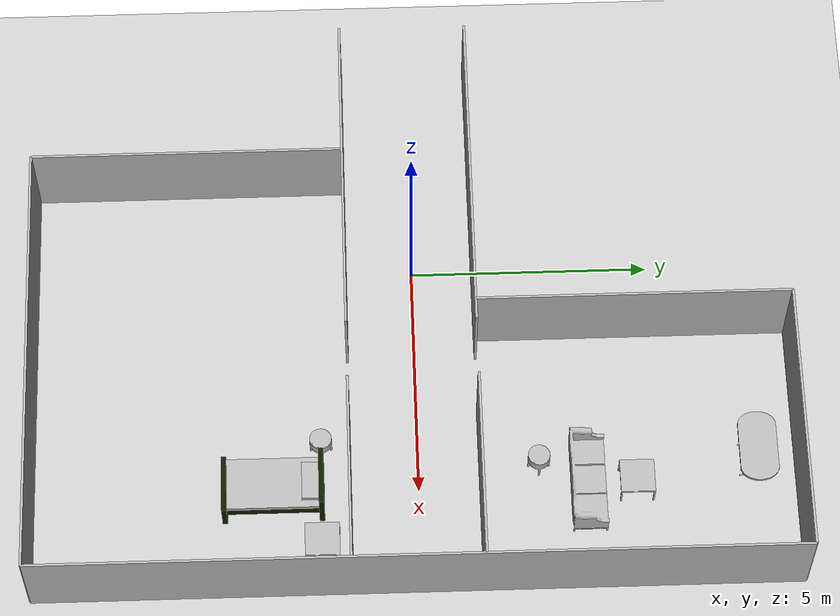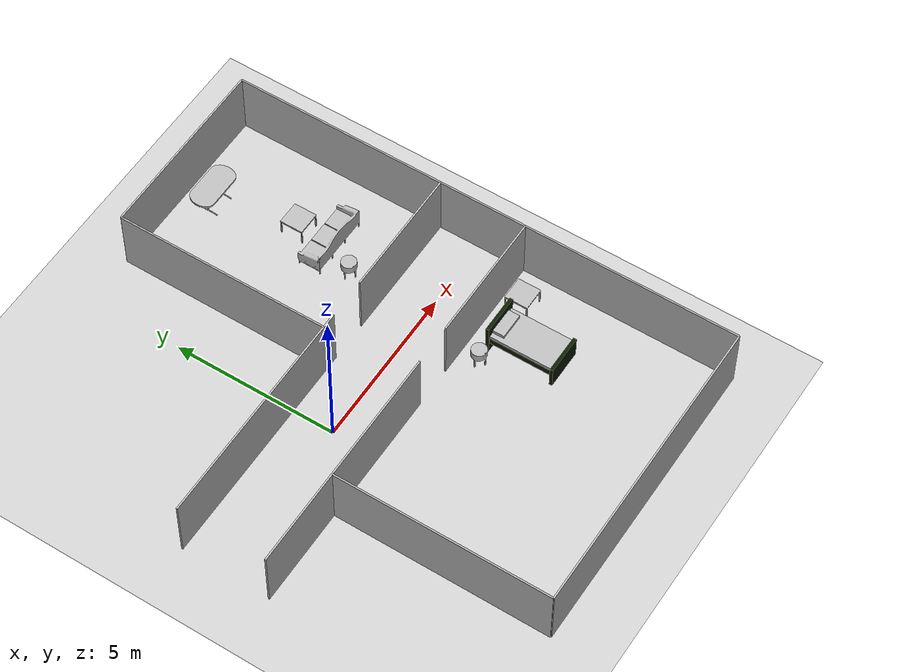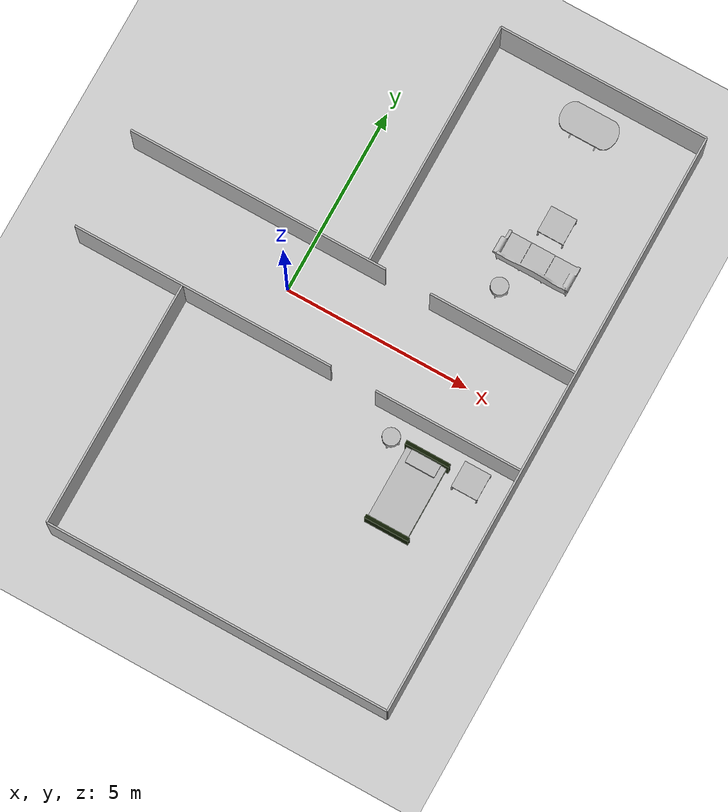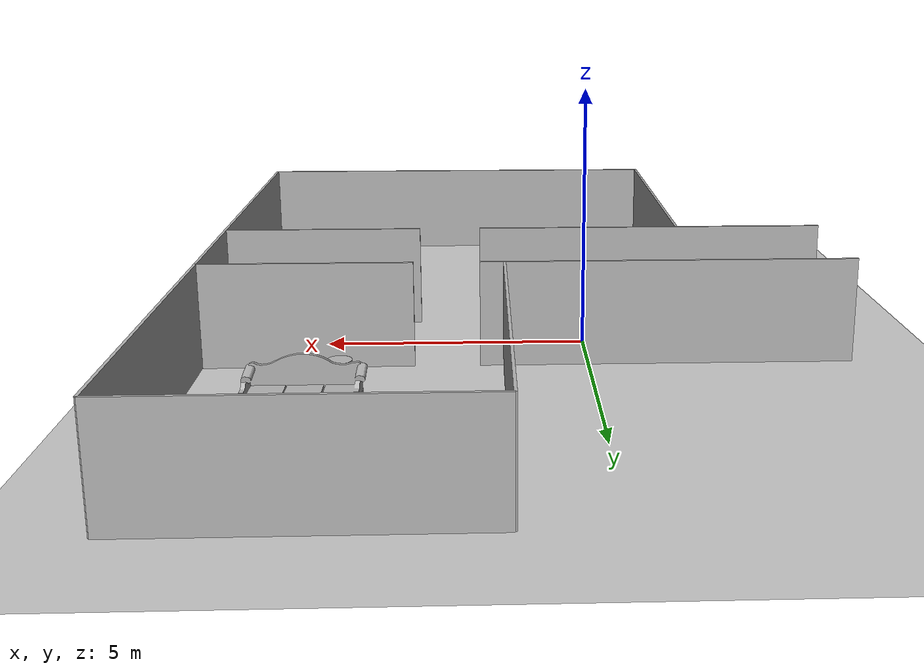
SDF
<sdf version="1.5">
 <world name="myworld">
  <include><uri>model://sun</uri></include>
  <include><uri>model://ground_plane</uri></include>
  <include><uri>model://hri_apartment</uri><pose>-5 0 1.5 0 3.1416 -1.5708</pose></include>
  <include><uri>model://hri_roundtable</uri><pose>4.5 2.5 0 0 0 0</pose></include>
  <include><uri>model://hri_couch</uri><pose>5 3.5 0 0 0 1.5708</pose></include>
  <include><uri>model://hri_coffeetable</uri><pose>5 4.5 0 0 0 0</pose></include>
  <include><uri>model://hri_dinnertable</uri><pose>4.5 7 0 0 0 1.5708</pose></include>
  <include><uri>model://hri_bed</uri><pose>5 -3 0 0 0 1.5708</pose></include>
  <include><uri>model://hri_roundtable</uri><pose>4 -2 0 0 0 0</pose></include>
  <include><uri>model://hri_coffeetable</uri><pose>6.2 -2 0 0 0 0</pose></include>
 </world>
</sdf>

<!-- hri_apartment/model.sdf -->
<sdf version="1.4">
<model name="hri_apartment">
  <pose>0 0 0 0 0 0</pose>
  <static>true</static>

    <link name="wall1">
      <pose>1.2827    3.5115    .5000 0 0 0</pose>
      <inertial>
        <mass>1000.0</mass>
        <inertia> <!-- interias are tricky to compute -->
          <!-- http://answers.gazebosim.org/question/4372/the-inertia-matrix-explained/ -->
          <ixx>0.083</ixx>       <!-- for a box: ixx = 0.083 * mass * (y*y + z*z) -->
          <ixy>0.0</ixy>         <!-- for a box: ixy = 0 -->
          <ixz>0.0</ixz>         <!-- for a box: ixz = 0 -->
          <iyy>0.083</iyy>       <!-- for a box: iyy = 0.083 * mass * (x*x + z*z) -->
          <iyz>0.0</iyz>         <!-- for a box: iyz = 0 -->
          <izz>0.083</izz>       <!-- for a box: izz = 0.083 * mass * (x*x + y*y) -->
        </inertia>
      </inertial>
      <collision name="collision">
        <geometry>
          <box>
            <size>0.0500    7.0231    2.0000</size>
          </box>
        </geometry>
      </collision>
      <visual name="visual">
        <geometry>
          <box>
            <size>0.0500    7.0231    2.0000</size>
          </box>
        </geometry>
      </visual>
    </link>

    <link name="wall2">
      <pose>-1.4097    3.5115    0.5000 0 0 0</pose>
      <inertial>
        <mass>1000.0</mass>
        <inertia> <!-- interias are tricky to compute -->
          <!-- http://answers.gazebosim.org/question/4372/the-inertia-matrix-explained/ -->
          <ixx>0.083</ixx>       <!-- for a box: ixx = 0.083 * mass * (y*y + z*z) -->
          <ixy>0.0</ixy>         <!-- for a box: ixy = 0 -->
          <ixz>0.0</ixz>         <!-- for a box: ixz = 0 -->
          <iyy>0.083</iyy>       <!-- for a box: iyy = 0.083 * mass * (x*x + z*z) -->
          <iyz>0.0</iyz>         <!-- for a box: iyz = 0 -->
          <izz>0.083</izz>       <!-- for a box: izz = 0.083 * mass * (x*x + y*y) -->
        </inertia>
      </inertial>
      <collision name="collision">
        <geometry>
          <box>
            <size>0.0500    7.0231    2.0000</size>
          </box>
        </geometry>
      </collision>
      <visual name="visual">
        <geometry>
          <box>
            <size>0.0500    7.0231    2.0000</size>
          </box>
        </geometry>
      </visual>
    </link>

    <link name="wall3">
      <pose>1.2827   10.2235    0.5000 0 0 0</pose>
      <inertial>
        <mass>1000.0</mass>
        <inertia> <!-- interias are tricky to compute -->
          <!-- http://answers.gazebosim.org/question/4372/the-inertia-matrix-explained/ -->
          <ixx>0.083</ixx>       <!-- for a box: ixx = 0.083 * mass * (y*y + z*z) -->
          <ixy>0.0</ixy>         <!-- for a box: ixy = 0 -->
          <ixz>0.0</ixz>         <!-- for a box: ixz = 0 -->
          <iyy>0.083</iyy>       <!-- for a box: iyy = 0.083 * mass * (x*x + z*z) -->
          <iyz>0.0</iyz>         <!-- for a box: iyz = 0 -->
          <izz>0.083</izz>       <!-- for a box: izz = 0.083 * mass * (x*x + y*y) -->
        </inertia>
      </inertial>
      <collision name="collision">
        <geometry>
          <box>
            <size>0.0500    3.9624    2.0000</size>
          </box>
        </geometry>
      </collision>
      <visual name="visual">
        <geometry>
          <box>
            <size>0.0500    3.9624    2.0000</size>
          </box>
        </geometry>
      </visual>
    </link>

    <link name="wall4">
      <pose>-1.4097   10.2235    0.5000 0 0 0</pose>
      <inertial>
        <mass>1000.0</mass>
        <inertia> <!-- interias are tricky to compute -->
          <!-- http://answers.gazebosim.org/question/4372/the-inertia-matrix-explained/ -->
          <ixx>0.083</ixx>       <!-- for a box: ixx = 0.083 * mass * (y*y + z*z) -->
          <ixy>0.0</ixy>         <!-- for a box: ixy = 0 -->
          <ixz>0.0</ixz>         <!-- for a box: ixz = 0 -->
          <iyy>0.083</iyy>       <!-- for a box: iyy = 0.083 * mass * (x*x + z*z) -->
          <iyz>0.0</iyz>         <!-- for a box: iyz = 0 -->
          <izz>0.083</izz>       <!-- for a box: izz = 0.083 * mass * (x*x + y*y) -->
        </inertia>
      </inertial>
      <collision name="collision">
        <geometry>
          <box>
            <size>0.0500    3.9624    2.0000</size>
          </box>
        </geometry>
      </collision>
      <visual name="visual">
        <geometry>
          <box>
            <size>0.0500    3.9624    2.0000</size>
          </box>
        </geometry>
      </visual>
    </link>

    <link name="wall5">
      <pose>-0.0635   12.2047    0.5000 0 0 0</pose>
      <inertial>
        <mass>1000.0</mass>
        <inertia> <!-- interias are tricky to compute -->
          <!-- http://answers.gazebosim.org/question/4372/the-inertia-matrix-explained/ -->
          <ixx>0.083</ixx>       <!-- for a box: ixx = 0.083 * mass * (y*y + z*z) -->
          <ixy>0.0</ixy>         <!-- for a box: ixy = 0 -->
          <ixz>0.0</ixz>         <!-- for a box: ixz = 0 -->
          <iyy>0.083</iyy>       <!-- for a box: iyy = 0.083 * mass * (x*x + z*z) -->
          <iyz>0.0</iyz>         <!-- for a box: iyz = 0 -->
          <izz>0.083</izz>       <!-- for a box: izz = 0.083 * mass * (x*x + y*y) -->
        </inertia>
      </inertial>
      <collision name="collision">
        <geometry>
          <box>
            <size>15.7988    0.0500    2.0000</size>
          </box>
        </geometry>
      </collision>
      <visual name="visual">
        <geometry>
          <box>
            <size>15.7988    0.0500    2.0000</size>
          </box>
        </geometry>
      </visual>
    </link>

    <link name="wall6">
      <pose>-7.9629    7.5819    0.5000 0 0 0</pose>
      <inertial>
        <mass>1000.0</mass>
        <inertia> <!-- interias are tricky to compute -->
          <!-- http://answers.gazebosim.org/question/4372/the-inertia-matrix-explained/ -->
          <ixx>0.083</ixx>       <!-- for a box: ixx = 0.083 * mass * (y*y + z*z) -->
          <ixy>0.0</ixy>         <!-- for a box: ixy = 0 -->
          <ixz>0.0</ixz>         <!-- for a box: ixz = 0 -->
          <iyy>0.083</iyy>       <!-- for a box: iyy = 0.083 * mass * (x*x + z*z) -->
          <iyz>0.0</iyz>         <!-- for a box: iyz = 0 -->
          <izz>0.083</izz>       <!-- for a box: izz = 0.083 * mass * (x*x + y*y) -->
        </inertia>
      </inertial>
      <collision name="collision">
        <geometry>
          <box>
            <size>0.0500    9.2456    2.0000</size>
          </box>
        </geometry>
      </collision>
      <visual name="visual">
        <geometry>
          <box>
            <size>0.0500    9.2456    2.0000</size>
          </box>
        </geometry>
      </visual>
    </link>

    <link name="wall7">
      <pose>-4.6863    2.9591    0.5000 0 0 0</pose>
      <inertial>
        <mass>1000.0</mass>
        <inertia> <!-- interias are tricky to compute -->
          <!-- http://answers.gazebosim.org/question/4372/the-inertia-matrix-explained/ -->
          <ixx>0.083</ixx>       <!-- for a box: ixx = 0.083 * mass * (y*y + z*z) -->
          <ixy>0.0</ixy>         <!-- for a box: ixy = 0 -->
          <ixz>0.0</ixz>         <!-- for a box: ixz = 0 -->
          <iyy>0.083</iyy>       <!-- for a box: iyy = 0.083 * mass * (x*x + z*z) -->
          <iyz>0.0</iyz>         <!-- for a box: iyz = 0 -->
          <izz>0.083</izz>       <!-- for a box: izz = 0.083 * mass * (x*x + y*y) -->
        </inertia>
      </inertial>
      <collision name="collision">
        <geometry>
          <box>
            <size>6.5532    0.0500    2.0000</size>
          </box>
        </geometry>
      </collision>
      <visual name="visual">
        <geometry>
          <box>
            <size>6.5532    0.0500    2.0000</size>
          </box>
        </geometry>
      </visual>
    </link>

    <link name="wall8">
      <pose>4.5593    6.5659    0.5000 0 0 0</pose>
      <inertial>
        <mass>1000.0</mass>
        <inertia> <!-- interias are tricky to compute -->
          <!-- http://answers.gazebosim.org/question/4372/the-inertia-matrix-explained/ -->
          <ixx>0.083</ixx>       <!-- for a box: ixx = 0.083 * mass * (y*y + z*z) -->
          <ixy>0.0</ixy>         <!-- for a box: ixy = 0 -->
          <ixz>0.0</ixz>         <!-- for a box: ixz = 0 -->
          <iyy>0.083</iyy>       <!-- for a box: iyy = 0.083 * mass * (x*x + z*z) -->
          <iyz>0.0</iyz>         <!-- for a box: iyz = 0 -->
          <izz>0.083</izz>       <!-- for a box: izz = 0.083 * mass * (x*x + y*y) -->
        </inertia>
      </inertial>
      <collision name="collision">
        <geometry>
          <box>
            <size>6.5532    0.0500    2.0000</size>
          </box>
        </geometry>
      </collision>
      <visual name="visual">
        <geometry>
          <box>
            <size>6.5532    0.0500    2.0000</size>
          </box>
        </geometry>
      </visual>
    </link>

    <link name="wall9">
      <pose>7.8359    9.3853    0.5000 0 0 0</pose>
      <inertial>
        <mass>1000.0</mass>
        <inertia> <!-- interias are tricky to compute -->
          <!-- http://answers.gazebosim.org/question/4372/the-inertia-matrix-explained/ -->
          <ixx>0.083</ixx>       <!-- for a box: ixx = 0.083 * mass * (y*y + z*z) -->
          <ixy>0.0</ixy>         <!-- for a box: ixy = 0 -->
          <ixz>0.0</ixz>         <!-- for a box: ixz = 0 -->
          <iyy>0.083</iyy>       <!-- for a box: iyy = 0.083 * mass * (x*x + z*z) -->
          <iyz>0.0</iyz>         <!-- for a box: iyz = 0 -->
          <izz>0.083</izz>       <!-- for a box: izz = 0.083 * mass * (x*x + y*y) -->
        </inertia>
      </inertial>
      <collision name="collision">
        <geometry>
          <box>
            <size>0.0500    5.6388    2.0000</size>
          </box>
        </geometry>
      </collision>
      <visual name="visual">
        <geometry>
          <box>
            <size>0.0500    5.6388    2.0000</size>
          </box>
        </geometry>
      </visual>
    </link>

  </model>
</sdf>

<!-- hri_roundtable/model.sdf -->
<sdf version="1.4">
<model name="round table">
  <pose>0 0 0 0 0 0</pose>
  <static>true</static>
    <link name="link">
      <pose>0 0 0 0 0 0</pose>
      <inertial>
        <mass>1.0</mass>
        <inertia> <!-- interias are tricky to compute -->
          <!-- http://answers.gazebosim.org/question/4372/the-inertia-matrix-explained/ -->
          <ixx>0.083</ixx>       <!-- for a box: ixx = 0.083 * mass * (y*y + z*z) -->
          <ixy>0.0</ixy>         <!-- for a box: ixy = 0 -->
          <ixz>0.0</ixz>         <!-- for a box: ixz = 0 -->
          <iyy>0.083</iyy>       <!-- for a box: iyy = 0.083 * mass * (x*x + z*z) -->
          <iyz>0.0</iyz>         <!-- for a box: iyz = 0 -->
          <izz>0.083</izz>       <!-- for a box: izz = 0.083 * mass * (x*x + y*y) -->
        </inertia>
      </inertial>
      <collision name="collision">
	<pose>0 0 0 1.5708 0 0</pose>
        <geometry>
	  <mesh>
	    <uri>model://hri_roundtable/meshes/roundtable.dae</uri>
	    <scale>1 1 1</scale>
	  </mesh>
        </geometry>
      </collision>
      <visual name="visual">
	<pose>0 0 0 1.5708 0 0</pose>
        <geometry>
	  <mesh>
	    <uri>model://hri_roundtable/meshes/roundtable.dae</uri>
	    <scale>1 1 1</scale>
	  </mesh>
        </geometry>
      </visual>
    </link>
  </model>
</sdf>

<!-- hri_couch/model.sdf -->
<sdf version="1.4">
<model name="couch">
  <pose>0 0 0 0 0 0</pose>
  <static>true</static>
    <link name="link">
      <pose>0 0 0 0 0 0</pose>
      <inertial>
        <mass>1.0</mass>
        <inertia> <!-- interias are tricky to compute -->
          <!-- http://answers.gazebosim.org/question/4372/the-inertia-matrix-explained/ -->
          <ixx>0.083</ixx>       <!-- for a box: ixx = 0.083 * mass * (y*y + z*z) -->
          <ixy>0.0</ixy>         <!-- for a box: ixy = 0 -->
          <ixz>0.0</ixz>         <!-- for a box: ixz = 0 -->
          <iyy>0.083</iyy>       <!-- for a box: iyy = 0.083 * mass * (x*x + z*z) -->
          <iyz>0.0</iyz>         <!-- for a box: iyz = 0 -->
          <izz>0.083</izz>       <!-- for a box: izz = 0.083 * mass * (x*x + y*y) -->
        </inertia>
      </inertial>
      <collision name="collision">
	<pose>0 0 0 1.5708 0 0</pose>
        <geometry>
	  <mesh>
	    <uri>model://hri_couch/meshes/couch.dae</uri>
	    <scale>1 1 1</scale>
	  </mesh>
        </geometry>
      </collision>
      <visual name="visual">
	<pose>0 0 0 1.5708 0 0</pose>
        <geometry>
	  <mesh>
	    <uri>model://hri_couch/meshes/couch.dae</uri>
	    <scale>1 1 1</scale>
	  </mesh>
        </geometry>
      </visual>
    </link>
  </model>
</sdf>

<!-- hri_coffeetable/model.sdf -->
<sdf version="1.4">
<model name="coffee table">
  <pose>0 0 0 0 0 0</pose>
  <static>true</static>
    <link name="link">
      <pose>0 0 0 0 0 0</pose>
      <inertial>
        <mass>1.0</mass>
        <inertia> <!-- interias are tricky to compute -->
          <!-- http://answers.gazebosim.org/question/4372/the-inertia-matrix-explained/ -->
          <ixx>0.083</ixx>       <!-- for a box: ixx = 0.083 * mass * (y*y + z*z) -->
          <ixy>0.0</ixy>         <!-- for a box: ixy = 0 -->
          <ixz>0.0</ixz>         <!-- for a box: ixz = 0 -->
          <iyy>0.083</iyy>       <!-- for a box: iyy = 0.083 * mass * (x*x + z*z) -->
          <iyz>0.0</iyz>         <!-- for a box: iyz = 0 -->
          <izz>0.083</izz>       <!-- for a box: izz = 0.083 * mass * (x*x + y*y) -->
        </inertia>
      </inertial>
      <collision name="collision">
	<pose>0 0 0 1.5708 0 0</pose>
        <geometry>
	  <mesh>
	    <uri>model://hri_coffeetable/meshes/coffeetable.dae</uri>
	    <scale>1 1 1</scale>
	  </mesh>
        </geometry>
      </collision>
      <visual name="visual">
	<pose>0 0 0 1.5708 0 0</pose>
        <geometry>
	  <mesh>
	    <uri>model://hri_coffeetable/meshes/coffeetable.dae</uri>
	    <scale>1 1 1</scale>
	  </mesh>
        </geometry>
      </visual>
    </link>
  </model>
</sdf>

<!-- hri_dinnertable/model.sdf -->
<sdf version="1.4">
<model name="dinner table">
  <pose>0 0 0 0 0 0</pose>
  <static>true</static>
    <link name="link">
      <pose>0 0 0 0 0 0</pose>
      <inertial>
        <mass>1.0</mass>
        <inertia> <!-- interias are tricky to compute -->
          <!-- http://answers.gazebosim.org/question/4372/the-inertia-matrix-explained/ -->
          <ixx>0.083</ixx>       <!-- for a box: ixx = 0.083 * mass * (y*y + z*z) -->
          <ixy>0.0</ixy>         <!-- for a box: ixy = 0 -->
          <ixz>0.0</ixz>         <!-- for a box: ixz = 0 -->
          <iyy>0.083</iyy>       <!-- for a box: iyy = 0.083 * mass * (x*x + z*z) -->
          <iyz>0.0</iyz>         <!-- for a box: iyz = 0 -->
          <izz>0.083</izz>       <!-- for a box: izz = 0.083 * mass * (x*x + y*y) -->
        </inertia>
      </inertial>
      <collision name="collision">
	<pose>0 0 0 1.5708 0 0</pose>
        <geometry>
	  <mesh>
	    <uri>model://hri_dinnertable/meshes/dinnertable.dae</uri>
	    <scale>1 1 1</scale>
	  </mesh>
        </geometry>
      </collision>
      <visual name="visual">
	<pose>0 0 0 1.5708 0 0</pose>
        <geometry>
	  <mesh>
	    <uri>model://hri_dinnertable/meshes/dinnertable.dae</uri>
	    <scale>1 1 1</scale>
	  </mesh>
        </geometry>
      </visual>
    </link>
  </model>
</sdf>

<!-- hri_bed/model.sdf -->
<sdf version="1.5">
<model name="bed">
  <static>true</static>
    <link name="link">
      <pose>0 0 0.6 0 0 0</pose>
      <inertial>
        <mass>1.0</mass>
        <inertia> <!-- interias are tricky to compute -->
          <!-- http://answers.gazebosim.org/question/4372/the-inertia-matrix-explained/ -->
          <ixx>0.083</ixx>       <!-- for a box: ixx = 0.083 * mass * (y*y + z*z) -->
          <ixy>0.0</ixy>         <!-- for a box: ixy = 0 -->
          <ixz>0.0</ixz>         <!-- for a box: ixz = 0 -->
          <iyy>0.083</iyy>       <!-- for a box: iyy = 0.083 * mass * (x*x + z*z) -->
          <iyz>0.0</iyz>         <!-- for a box: iyz = 0 -->
          <izz>0.083</izz>       <!-- for a box: izz = 0.083 * mass * (x*x + y*y) -->
        </inertia>
      </inertial>
      <collision name="collision">
        <geometry>
          <box>
            <size>2.0    1.1    0.10</size>
          </box>
        </geometry>
      </collision>
      <visual name="visual">
        <geometry>
          <box>
            <size>2.0    1.1    0.10</size>
          </box>
        </geometry>
      </visual>
    </link>

    <link name="link2">
      <pose>0 0 0.45 0 0 0</pose>
      <inertial>
        <mass>1.0</mass>
        <inertia> <!-- interias are tricky to compute -->
          <!-- http://answers.gazebosim.org/question/4372/the-inertia-matrix-explained/ -->
          <ixx>0.083</ixx>       <!-- for a box: ixx = 0.083 * mass * (y*y + z*z) -->
          <ixy>0.0</ixy>         <!-- for a box: ixy = 0 -->
          <ixz>0.0</ixz>         <!-- for a box: ixz = 0 -->
          <iyy>0.083</iyy>       <!-- for a box: iyy = 0.083 * mass * (x*x + z*z) -->
          <iyz>0.0</iyz>         <!-- for a box: iyz = 0 -->
          <izz>0.083</izz>       <!-- for a box: izz = 0.083 * mass * (x*x + y*y) -->
        </inertia>
      </inertial>
      <collision name="collision">
        <geometry>
          <box>
            <size>2.0    1.1    0.20</size>
          </box>
        </geometry>
      </collision>
      <visual name="visual">
        <geometry>
          <box>
            <size>2.0    1.1    0.20</size>
          </box>
        </geometry>
	<material>
	  <ambient>0.25 0 0 1</ambient>
	  <diffuse>0.05 0.1 0 1</diffuse>
	  <specular>0.1 0.1 0.1 1</specular>
	  <emissive>0 0 0 0</emissive>
	</material>
      </visual>
    </link>

    <link name="link3">
      <pose>1 0 0.5 0 0 0</pose>
      <inertial>
        <mass>1.0</mass>
        <inertia> <!-- interias are tricky to compute -->
          <!-- http://answers.gazebosim.org/question/4372/the-inertia-matrix-explained/ -->
          <ixx>0.083</ixx>       <!-- for a box: ixx = 0.083 * mass * (y*y + z*z) -->
          <ixy>0.0</ixy>         <!-- for a box: ixy = 0 -->
          <ixz>0.0</ixz>         <!-- for a box: ixz = 0 -->
          <iyy>0.083</iyy>       <!-- for a box: iyy = 0.083 * mass * (x*x + z*z) -->
          <iyz>0.0</iyz>         <!-- for a box: iyz = 0 -->
          <izz>0.083</izz>       <!-- for a box: izz = 0.083 * mass * (x*x + y*y) -->
        </inertia>
      </inertial>
      <collision name="collision">
        <geometry>
          <box>
            <size>0.1    1.2    1.0</size>
          </box>
        </geometry>
      </collision>
      <visual name="visual">
        <geometry>
          <box>
            <size>0.1    1.2    1.0</size>
          </box>
        </geometry>
	<material>
	  <ambient>0.25 0 0 1</ambient>
	  <diffuse>0.05 0.1 0 1</diffuse>
	  <specular>0.1 0.1 0.1 1</specular>
	  <emissive>0 0 0 0</emissive>
	</material>
      </visual>
    </link>

    <link name="link4">
      <pose>-1 0 0.35 0 0 0</pose>
      <inertial>
        <mass>1.0</mass>
        <inertia> <!-- interias are tricky to compute -->
          <!-- http://answers.gazebosim.org/question/4372/the-inertia-matrix-explained/ -->
          <ixx>0.083</ixx>       <!-- for a box: ixx = 0.083 * mass * (y*y + z*z) -->
          <ixy>0.0</ixy>         <!-- for a box: ixy = 0 -->
          <ixz>0.0</ixz>         <!-- for a box: ixz = 0 -->
          <iyy>0.083</iyy>       <!-- for a box: iyy = 0.083 * mass * (x*x + z*z) -->
          <iyz>0.0</iyz>         <!-- for a box: iyz = 0 -->
          <izz>0.083</izz>       <!-- for a box: izz = 0.083 * mass * (x*x + y*y) -->
        </inertia>
      </inertial>
      <collision name="collision">
        <geometry>
          <box>
            <size>0.1    1.2    0.70</size>
          </box>
        </geometry>
      </collision>
      <visual name="visual">
        <geometry>
          <box>
            <size>0.1    1.2    0.70</size>
          </box>
        </geometry>
	<material>
	  <ambient>0.25 0 0 1</ambient>
	  <diffuse>0.05 0.1 0 1</diffuse>
	  <specular>0.1 0.1 0.1 1</specular>
	  <emissive>0 0 0 0</emissive>
	</material>
      </visual>
    </link>

    <link name="link5">
      <pose>0.80 0 0.7 0 0 0</pose>
      <inertial>
        <mass>1.0</mass>
        <inertia> <!-- interias are tricky to compute -->
          <!-- http://answers.gazebosim.org/question/4372/the-inertia-matrix-explained/ -->
          <ixx>0.083</ixx>       <!-- for a box: ixx = 0.083 * mass * (y*y + z*z) -->
          <ixy>0.0</ixy>         <!-- for a box: ixy = 0 -->
          <ixz>0.0</ixz>         <!-- for a box: ixz = 0 -->
          <iyy>0.083</iyy>       <!-- for a box: iyy = 0.083 * mass * (x*x + z*z) -->
          <iyz>0.0</iyz>         <!-- for a box: iyz = 0 -->
          <izz>0.083</izz>       <!-- for a box: izz = 0.083 * mass * (x*x + y*y) -->
        </inertia>
      </inertial>
      <collision name="collision">
        <geometry>
          <box>
            <size>0.4    0.8    0.10</size>
          </box>
        </geometry>
      </collision>
      <visual name="visual">
        <geometry>
          <box>
            <size>0.4    0.8    0.10</size>
          </box>
        </geometry>
      </visual>
    </link>

  </model>
</sdf>
